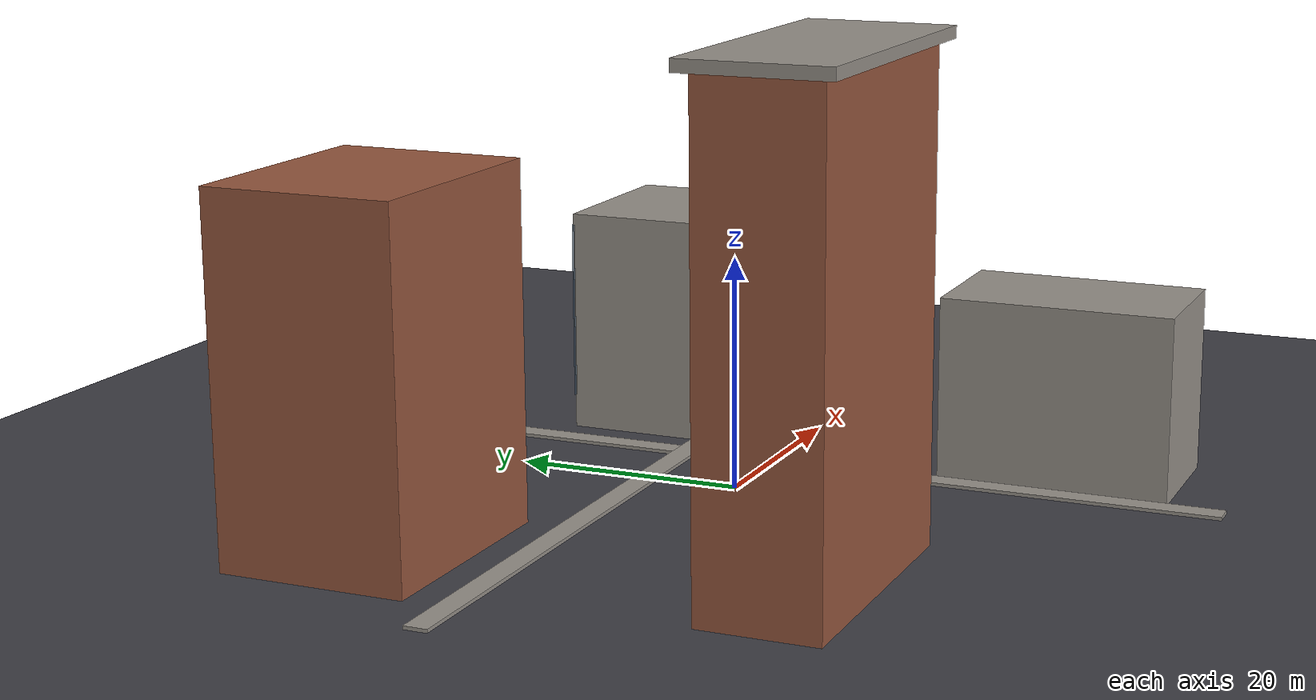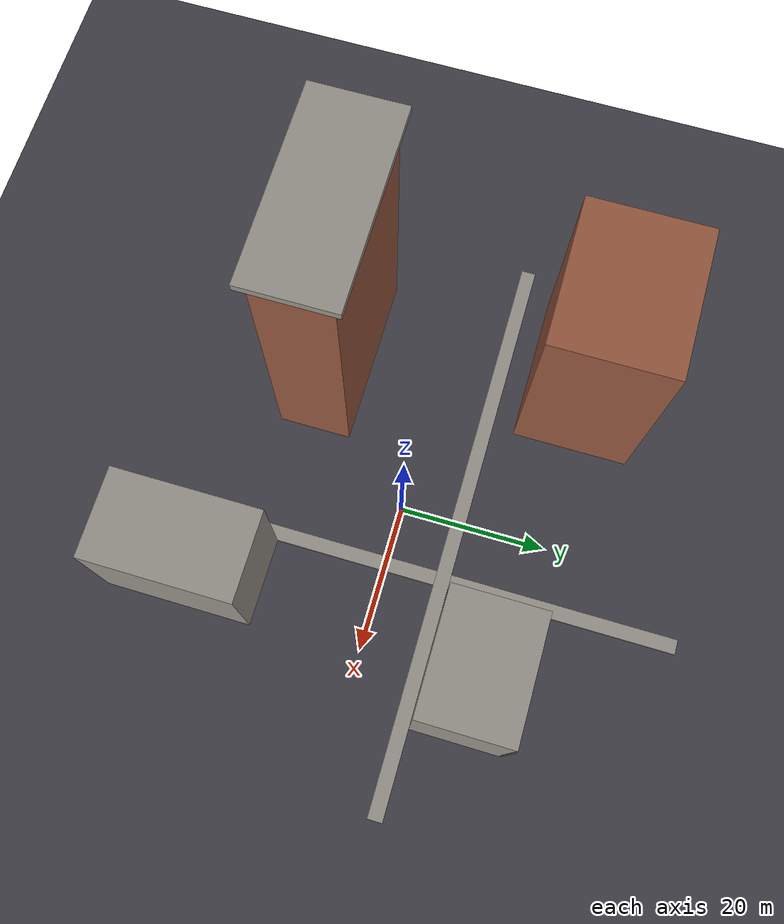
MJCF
<mujoco>
  <!-- Urban environment with buildings and streets -->
  <asset>
    <material name="asphalt" rgba="0.25 0.25 0.28 1"/>
    <material name="concrete" rgba="0.6 0.58 0.55 1"/>
    <material name="brick" rgba="0.6 0.35 0.25 1"/>
    <material name="glass" rgba="0.3 0.4 0.5 0.6"/>
  </asset>

  <worldbody>
    <body name="urban_terrain">
      <!-- Street surface -->
      <geom name="street" type="plane" size="100 100 0.1" material="asphalt" friction="1.0 0.5 0.1"/>

      <!-- Buildings - Block 1 -->
      <geom name="building_1" type="box" size="8 6 10" pos="20 15 10" material="concrete"/>
      <geom name="building_1_windows" type="box" size="8.1 0.1 8" pos="20 21 11" material="glass"/>

      <!-- Buildings - Block 2 -->
      <geom name="building_2" type="box" size="10 8 15" pos="-25 20 15" material="brick"/>

      <!-- Buildings - Block 3 -->
      <geom name="building_3" type="box" size="6 10 8" pos="15 -25 8" material="concrete"/>

      <!-- Buildings - Block 4 -->
      <geom name="building_4" type="box" size="12 5 20" pos="-20 -15 20" material="brick"/>
      <geom name="building_4_roof" type="box" size="13 6 0.5" pos="-20 -15 40.5" material="concrete"/>

      <!-- Sidewalks -->
      <geom name="sidewalk_1" type="box" size="40 1 0.15" pos="0 8 0.15" material="concrete"/>
      <geom name="sidewalk_2" type="box" size="1 40 0.15" pos="8 0 0.15" material="concrete"/>
    </body>
  </worldbody>
</mujoco>
